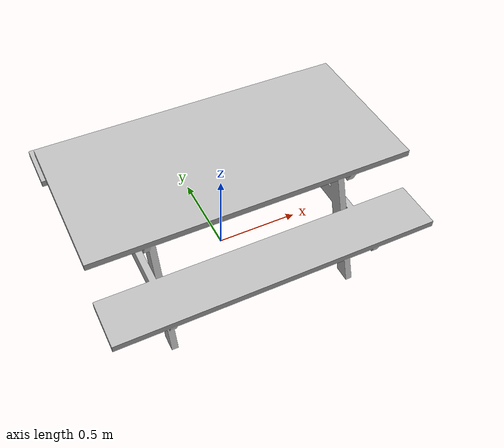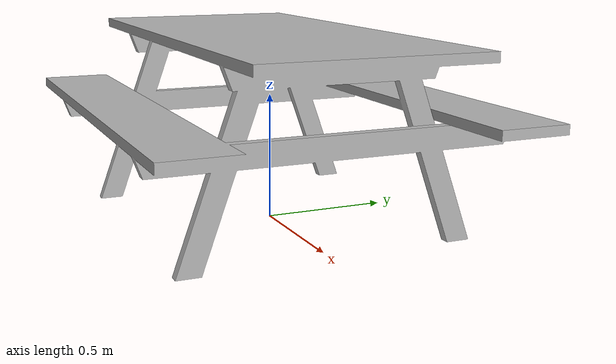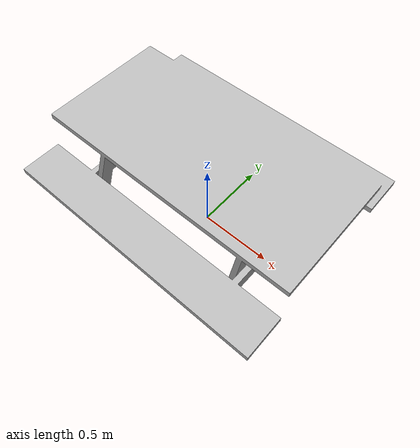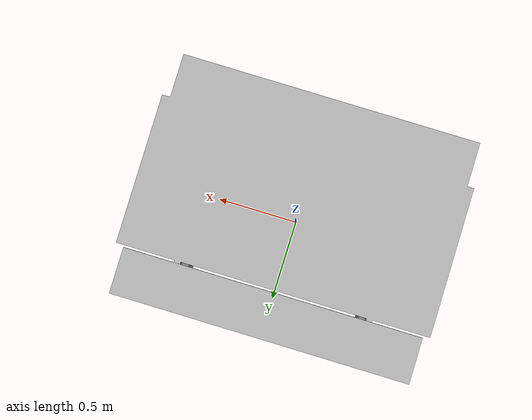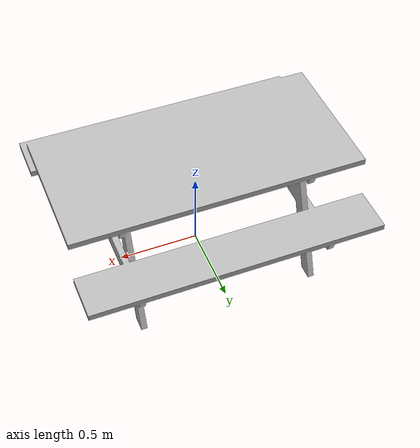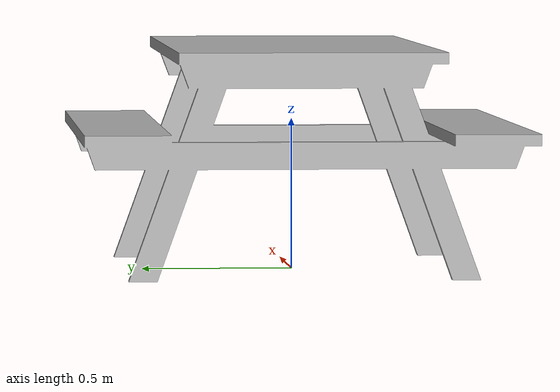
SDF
<?xml version="1.0" ?>
<sdf version="1.5">
  <model name="picnic_table">
    <static>true</static>
    <link name="picnic_table_link">
      <collision name="collision">
        <geometry>
          <mesh>
            <uri>model://picnic_table/meshes/picnic_table.stl</uri>
          </mesh>
        </geometry>
      </collision>
      <visual name="visual">
        <geometry>
          <mesh>
            <uri>model://picnic_table/meshes/picnic_table.dae</uri>
          </mesh>
        </geometry>
      </visual>
    </link>
  </model>
</sdf>
